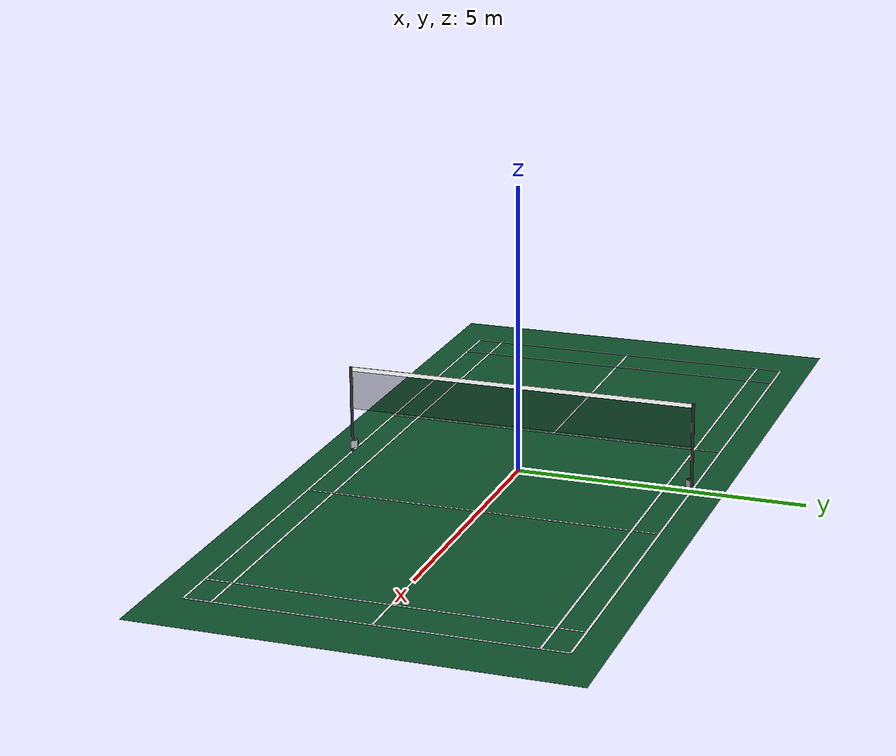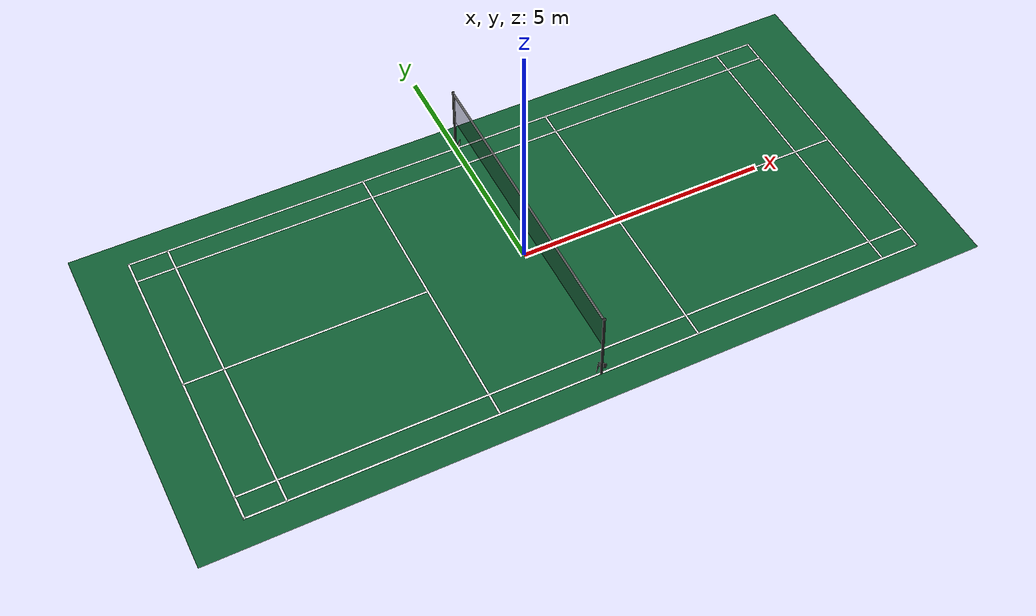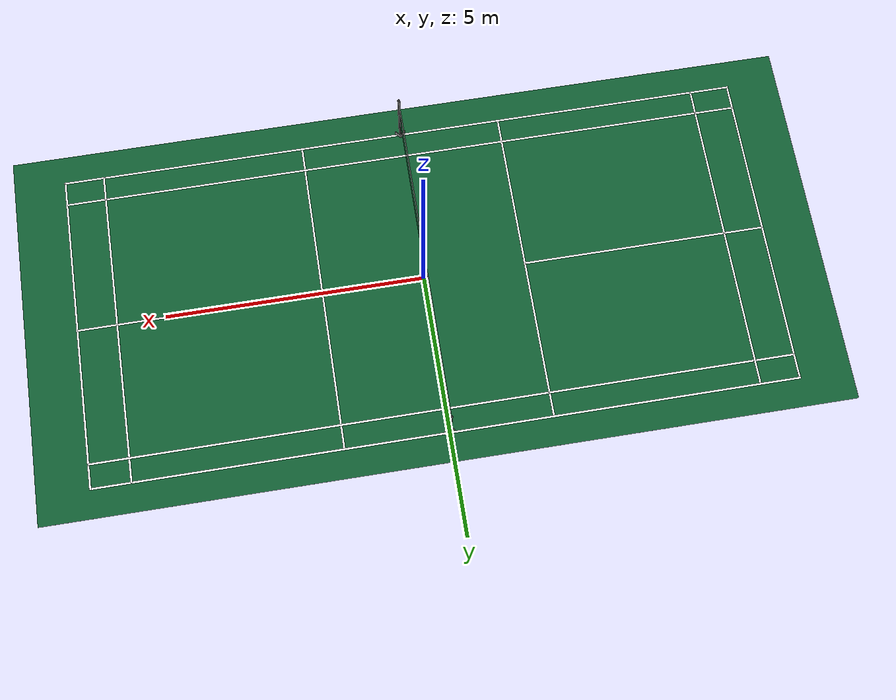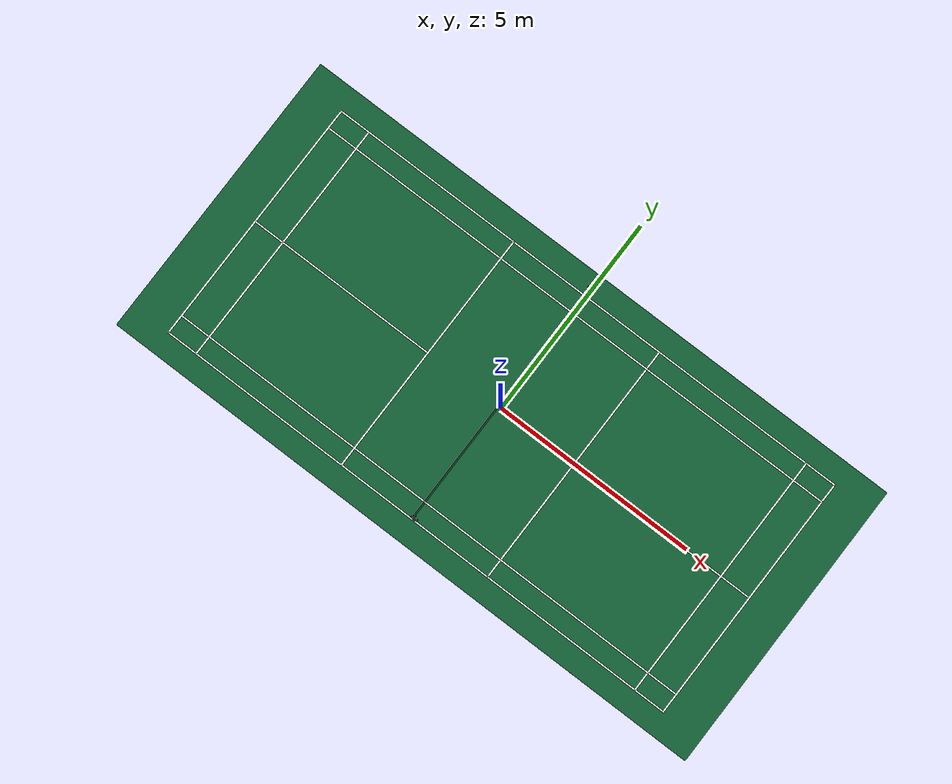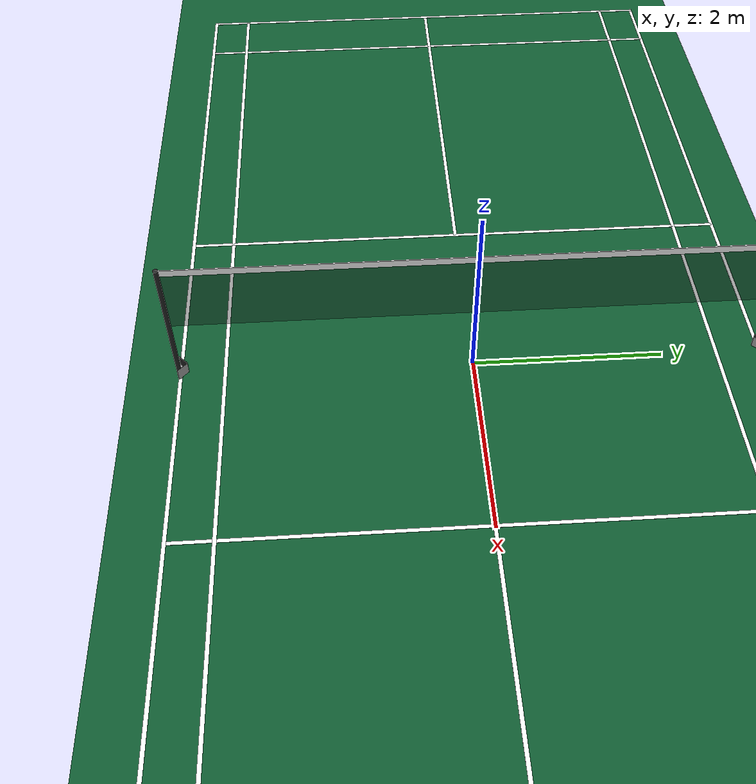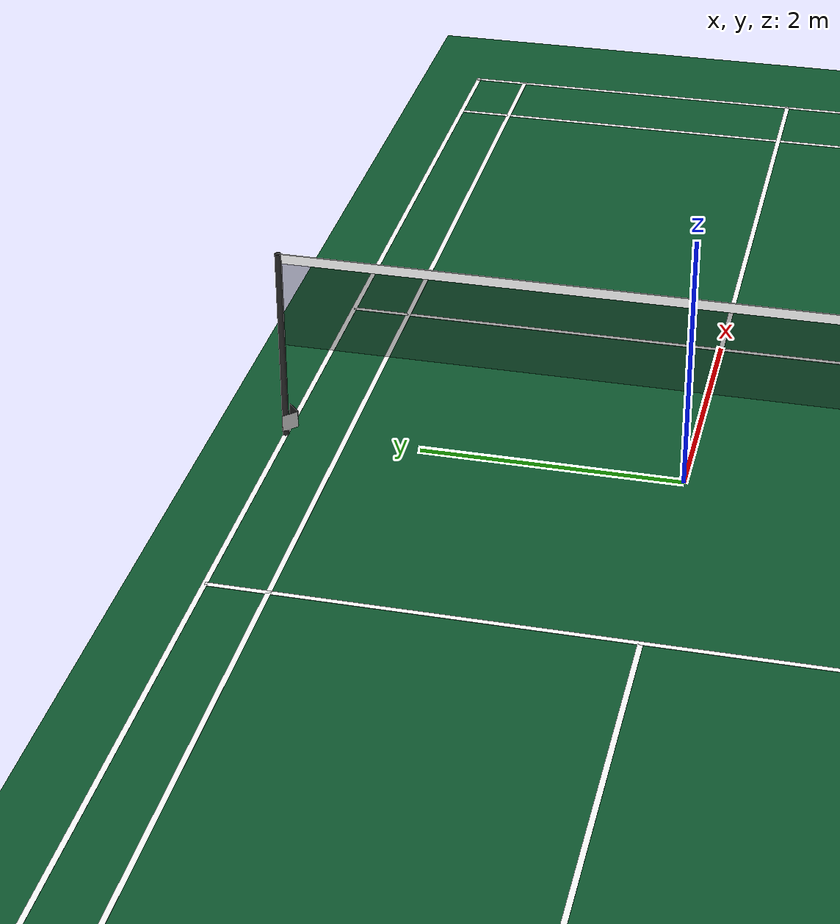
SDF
<?xml version="1.0"?>
<sdf version="1.10">
  <world name="yolo_dataset">
    <!-- Debug-only rendering world. No production simulation files are changed. -->
    <physics name="dataset_physics" type="ignored">
      <max_step_size>0.01</max_step_size>
      <real_time_factor>0.0</real_time_factor>
    </physics>

    <plugin filename="gz-sim-physics-system" name="gz::sim::systems::Physics"/>
    <plugin filename="gz-sim-user-commands-system" name="gz::sim::systems::UserCommands"/>
    <plugin filename="gz-sim-scene-broadcaster-system" name="gz::sim::systems::SceneBroadcaster"/>
    <plugin filename="gz-sim-sensors-system" name="gz::sim::systems::Sensors">
      <render_engine>ogre2</render_engine>
    </plugin>

    <scene>
      <ambient>0.08 0.08 0.08 1</ambient>
      <background>0.025 0.030 0.035 1</background>
      <shadows>true</shadows>
    </scene>

    <!-- Same six-side-light concept as the production badminton world. -->
    <light type="spot" name="court_light_left_1">
      <pose>-4.5 4.6 7.0 0 0 0</pose>
      <diffuse>0.95 0.95 0.92 1</diffuse>
      <specular>0.20 0.20 0.20 1</specular>
      <direction>0 -0.55 -0.84</direction>
      <attenuation><range>18</range><constant>0.45</constant><linear>0.015</linear><quadratic>0.001</quadratic></attenuation>
      <spot><inner_angle>0.70</inner_angle><outer_angle>1.20</outer_angle><falloff>0.80</falloff></spot>
      <cast_shadows>true</cast_shadows>
    </light>
    <light type="spot" name="court_light_left_2">
      <pose>0 4.6 7.0 0 0 0</pose>
      <diffuse>0.95 0.95 0.92 1</diffuse>
      <specular>0.20 0.20 0.20 1</specular>
      <direction>0 -0.55 -0.84</direction>
      <attenuation><range>18</range><constant>0.45</constant><linear>0.015</linear><quadratic>0.001</quadratic></attenuation>
      <spot><inner_angle>0.70</inner_angle><outer_angle>1.20</outer_angle><falloff>0.80</falloff></spot>
      <cast_shadows>true</cast_shadows>
    </light>
    <light type="spot" name="court_light_left_3">
      <pose>4.5 4.6 7.0 0 0 0</pose>
      <diffuse>0.95 0.95 0.92 1</diffuse>
      <specular>0.20 0.20 0.20 1</specular>
      <direction>0 -0.55 -0.84</direction>
      <attenuation><range>18</range><constant>0.45</constant><linear>0.015</linear><quadratic>0.001</quadratic></attenuation>
      <spot><inner_angle>0.70</inner_angle><outer_angle>1.20</outer_angle><falloff>0.80</falloff></spot>
      <cast_shadows>true</cast_shadows>
    </light>
    <light type="spot" name="court_light_right_1">
      <pose>-4.5 -4.6 7.0 0 0 0</pose>
      <diffuse>0.95 0.95 0.92 1</diffuse>
      <specular>0.20 0.20 0.20 1</specular>
      <direction>0 0.55 -0.84</direction>
      <attenuation><range>18</range><constant>0.45</constant><linear>0.015</linear><quadratic>0.001</quadratic></attenuation>
      <spot><inner_angle>0.70</inner_angle><outer_angle>1.20</outer_angle><falloff>0.80</falloff></spot>
      <cast_shadows>true</cast_shadows>
    </light>
    <light type="spot" name="court_light_right_2">
      <pose>0 -4.6 7.0 0 0 0</pose>
      <diffuse>0.95 0.95 0.92 1</diffuse>
      <specular>0.20 0.20 0.20 1</specular>
      <direction>0 0.55 -0.84</direction>
      <attenuation><range>18</range><constant>0.45</constant><linear>0.015</linear><quadratic>0.001</quadratic></attenuation>
      <spot><inner_angle>0.70</inner_angle><outer_angle>1.20</outer_angle><falloff>0.80</falloff></spot>
      <cast_shadows>true</cast_shadows>
    </light>
    <light type="spot" name="court_light_right_3">
      <pose>4.5 -4.6 7.0 0 0 0</pose>
      <diffuse>0.95 0.95 0.92 1</diffuse>
      <specular>0.20 0.20 0.20 1</specular>
      <direction>0 0.55 -0.84</direction>
      <attenuation><range>18</range><constant>0.45</constant><linear>0.015</linear><quadratic>0.001</quadratic></attenuation>
      <spot><inner_angle>0.70</inner_angle><outer_angle>1.20</outer_angle><falloff>0.80</falloff></spot>
      <cast_shadows>true</cast_shadows>
    </light>

    <model name="dataset_court">
      <static>true</static>
      <link name="court_link">
        <visual name="mat">
          <pose>0 0 -0.001 0 0 0</pose>
          <geometry><box><size>15.4 7.2 0.002</size></box></geometry>
          <material>
            <ambient>0.045 0.265 0.145 1</ambient>
            <diffuse>0.055 0.345 0.185 1</diffuse>
            <specular>0.015 0.015 0.015 1</specular>
          </material>
        </visual>

        <!-- Doubles and singles sidelines. -->
        <visual name="line_y_p305"><pose>0 3.05 0.001 0 0 0</pose><geometry><box><size>13.44 0.04 0.002</size></box></geometry><material><ambient>1 1 1 1</ambient><diffuse>1 1 1 1</diffuse></material></visual>
        <visual name="line_y_n305"><pose>0 -3.05 0.001 0 0 0</pose><geometry><box><size>13.44 0.04 0.002</size></box></geometry><material><ambient>1 1 1 1</ambient><diffuse>1 1 1 1</diffuse></material></visual>
        <visual name="line_y_p259"><pose>0 2.59 0.001 0 0 0</pose><geometry><box><size>13.40 0.04 0.002</size></box></geometry><material><ambient>1 1 1 1</ambient><diffuse>1 1 1 1</diffuse></material></visual>
        <visual name="line_y_n259"><pose>0 -2.59 0.001 0 0 0</pose><geometry><box><size>13.40 0.04 0.002</size></box></geometry><material><ambient>1 1 1 1</ambient><diffuse>1 1 1 1</diffuse></material></visual>

        <!-- Baselines, short service and doubles long service lines. -->
        <visual name="line_x_p670"><pose>6.70 0 0.001 0 0 0</pose><geometry><box><size>0.04 6.14 0.002</size></box></geometry><material><ambient>1 1 1 1</ambient><diffuse>1 1 1 1</diffuse></material></visual>
        <visual name="line_x_n670"><pose>-6.70 0 0.001 0 0 0</pose><geometry><box><size>0.04 6.14 0.002</size></box></geometry><material><ambient>1 1 1 1</ambient><diffuse>1 1 1 1</diffuse></material></visual>
        <visual name="line_x_p198"><pose>1.98 0 0.001 0 0 0</pose><geometry><box><size>0.04 6.10 0.002</size></box></geometry><material><ambient>1 1 1 1</ambient><diffuse>1 1 1 1</diffuse></material></visual>
        <visual name="line_x_n198"><pose>-1.98 0 0.001 0 0 0</pose><geometry><box><size>0.04 6.10 0.002</size></box></geometry><material><ambient>1 1 1 1</ambient><diffuse>1 1 1 1</diffuse></material></visual>
        <visual name="line_x_p594"><pose>5.94 0 0.001 0 0 0</pose><geometry><box><size>0.04 6.10 0.002</size></box></geometry><material><ambient>1 1 1 1</ambient><diffuse>1 1 1 1</diffuse></material></visual>
        <visual name="line_x_n594"><pose>-5.94 0 0.001 0 0 0</pose><geometry><box><size>0.04 6.10 0.002</size></box></geometry><material><ambient>1 1 1 1</ambient><diffuse>1 1 1 1</diffuse></material></visual>
        <visual name="center_p"><pose>4.34 0 0.001 0 0 0</pose><geometry><box><size>4.72 0.04 0.002</size></box></geometry><material><ambient>1 1 1 1</ambient><diffuse>1 1 1 1</diffuse></material></visual>
        <visual name="center_n"><pose>-4.34 0 0.001 0 0 0</pose><geometry><box><size>4.72 0.04 0.002</size></box></geometry><material><ambient>1 1 1 1</ambient><diffuse>1 1 1 1</diffuse></material></visual>
      </link>
    </model>

    <model name="net_assembly">
      <static>true</static>
      <link name="net_link">
        <visual name="left_post"><pose>0 3.05 0.775 0 0 0</pose><geometry><cylinder><radius>0.025</radius><length>1.55</length></cylinder></geometry><material><ambient>0.15 0.15 0.15 1</ambient><diffuse>0.15 0.15 0.15 1</diffuse></material></visual>
        <visual name="right_post"><pose>0 -3.05 0.775 0 0 0</pose><geometry><cylinder><radius>0.025</radius><length>1.55</length></cylinder></geometry><material><ambient>0.15 0.15 0.15 1</ambient><diffuse>0.15 0.15 0.15 1</diffuse></material></visual>
        <visual name="net"><pose>0 0 1.17 0 0 0</pose><geometry><box><size>0.005 6.10 0.76</size></box></geometry><material><ambient>0.05 0.05 0.05 1</ambient><diffuse>0.05 0.05 0.05 1</diffuse></material><transparency>0.65</transparency></visual>
        <visual name="tape"><pose>0 0 1.5125 0 0 0</pose><geometry><box><size>0.01 6.10 0.075</size></box></geometry><material><ambient>1 1 1 1</ambient><diffuse>1 1 1 1</diffuse></material></visual>
      </link>
    </model>

    <include><uri>model://court_apriltags</uri></include>

    <!-- Pose is camera_color_frame, matching the real SCROBOT camera height/pitch. -->
    <include>
      <uri>model://yolo_camera_rig</uri>
      <name>yolo_camera_rig</name>
      <pose>2.0 0 0.28683059 0 0.2617993877991494 0</pose>
    </include>
  </world>
</sdf>

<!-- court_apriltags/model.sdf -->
<sdf version="1.9">
  <model name="court_apriltags">
    <static>true</static>

    <link name="tag_mount_0">
      <pose>0.053033009 2.996966991 0.150000000 0 0 -0.785398163</pose>
      <visual name="backing">
        <pose>-0.001750 0 0 0 0 0</pose>
        <geometry><box><size>0.003000 0.133333333 0.133333333</size></box></geometry>
        <material><ambient>0.15 0.15 0.15 1</ambient><diffuse>0.15 0.15 0.15 1</diffuse><specular>0 0 0 1</specular></material>
      </visual>
      <visual name="tag_texture"><geometry><mesh><uri>model://court_apriltags/meshes/tag_0.obj</uri></mesh></geometry></visual>
    </link>

    <link name="tag_mount_1">
      <pose>0.053033009 -2.996966991 0.150000000 0 0 0.785398163</pose>
      <visual name="backing">
        <pose>-0.001750 0 0 0 0 0</pose>
        <geometry><box><size>0.003000 0.133333333 0.133333333</size></box></geometry>
        <material><ambient>0.15 0.15 0.15 1</ambient><diffuse>0.15 0.15 0.15 1</diffuse><specular>0 0 0 1</specular></material>
      </visual>
      <visual name="tag_texture"><geometry><mesh><uri>model://court_apriltags/meshes/tag_1.obj</uri></mesh></geometry></visual>
    </link>

    <link name="tag_mount_2">
      <pose>-0.053033009 2.996966991 0.150000000 0 0 -2.356194490</pose>
      <visual name="backing">
        <pose>-0.001750 0 0 0 0 0</pose>
        <geometry><box><size>0.003000 0.133333333 0.133333333</size></box></geometry>
        <material><ambient>0.15 0.15 0.15 1</ambient><diffuse>0.15 0.15 0.15 1</diffuse><specular>0 0 0 1</specular></material>
      </visual>
      <visual name="tag_texture"><geometry><mesh><uri>model://court_apriltags/meshes/tag_2.obj</uri></mesh></geometry></visual>
    </link>

    <link name="tag_mount_3">
      <pose>-0.053033009 -2.996966991 0.150000000 0 0 2.356194490</pose>
      <visual name="backing">
        <pose>-0.001750 0 0 0 0 0</pose>
        <geometry><box><size>0.003000 0.133333333 0.133333333</size></box></geometry>
        <material><ambient>0.15 0.15 0.15 1</ambient><diffuse>0.15 0.15 0.15 1</diffuse><specular>0 0 0 1</specular></material>
      </visual>
      <visual name="tag_texture"><geometry><mesh><uri>model://court_apriltags/meshes/tag_3.obj</uri></mesh></geometry></visual>
    </link>

  </model>
</sdf>

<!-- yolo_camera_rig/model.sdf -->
<sdf version="1.10">
  <model name="yolo_camera_rig">
    <static>true</static>
    <link name="camera_color_frame">
      <sensor name="d435i_color_dataset" type="camera">
        <always_on>true</always_on>
        <update_rate>30.0</update_rate>
        <visualize>false</visualize>
        <topic>/yolo/camera/color</topic>
        <gz_frame_id>camera_color_optical_frame</gz_frame_id>

        <camera name="d435i_color_dataset_camera">
          <!-- Same SCROBOT factory-calibration-derived RGB HFOV. -->
          <horizontal_fov>1.229041640167034</horizontal_fov>
          <camera_info_topic>/yolo/camera/color/camera_info</camera_info_topic>
          <image>
            <width>1280</width>
            <height>720</height>
            <format>R8G8B8</format>
          </image>
          <clip>
            <near>0.05</near>
            <far>20.0</far>
          </clip>
          <optical_frame_id>camera_color_optical_frame</optical_frame_id>
        </camera>
      </sensor>
    </link>
  </model>
</sdf>
